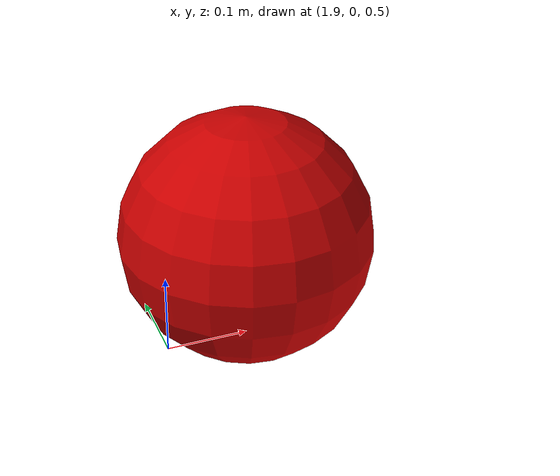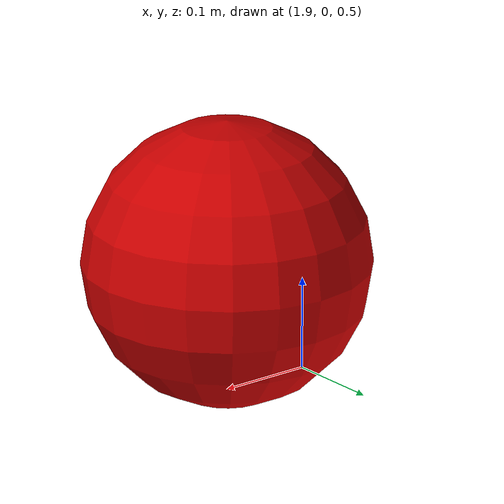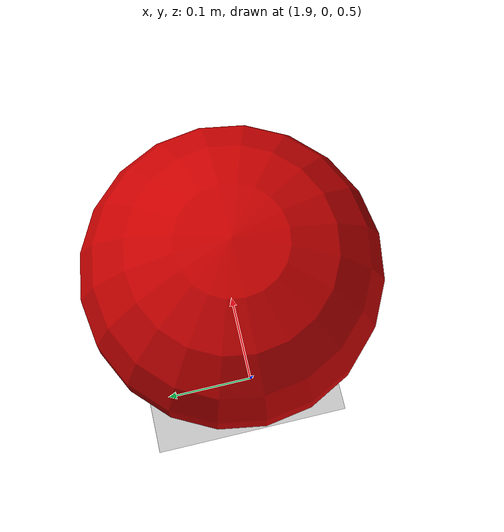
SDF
<?xml version="1.0" ?>
<sdf version="1.6">
  <world name="default">
    <include>
      <uri>model://ground_plane</uri>
    </include>
    <include>
      <uri>model://sun</uri>
    </include>

    <model name="my_sensor">
      <link name="sonar_sensor">
        <pose>0 0 0.64 1.570796327 0 0</pose>
        <gravity>false</gravity>
        <sensor name='spherefollowing_proximity_sensor' type='sonar'>
          <pose>0 0 0 0 -1.570796327 0</pose>
          <always_on>1</always_on>
          <visualize>1</visualize>
          <update_rate>30.000000</update_rate>
          <sonar>
            <min>0.25</min>
            <max>2</max>
            <radius>0.3</radius>
          </sonar>
          <plugin name='sonar_measure' filename='SonarMeasurePlugin.so'/>
        </sensor>
      </link>
    </model>

    <model name="sphere">
      <pose>2 0 0.64 0 0 0</pose>
      <static>false</static>
      <link name="body">
        <gravity>false</gravity>
        <visual name="visual">
           <geometry>
             <sphere><radius>0.15</radius></sphere>
           </geometry>
           <material>
            <ambient>0.8 0.0 0.0 1 </ambient>
            <diffuse>0.8 0.0 0.0 1 </diffuse>
            <specular>0.25 0.25 0.25 1 </specular>
          </material>
        </visual>
        <collision name="collision">
          <geometry>
            <sphere>
              <radius>0.15</radius>
            </sphere>
          </geometry>
        </collision>
      </link>
      <plugin name="SphereMovePlugin" filename="SphereMovePlugin.so"/>
    </model>
  </world>
</sdf>
